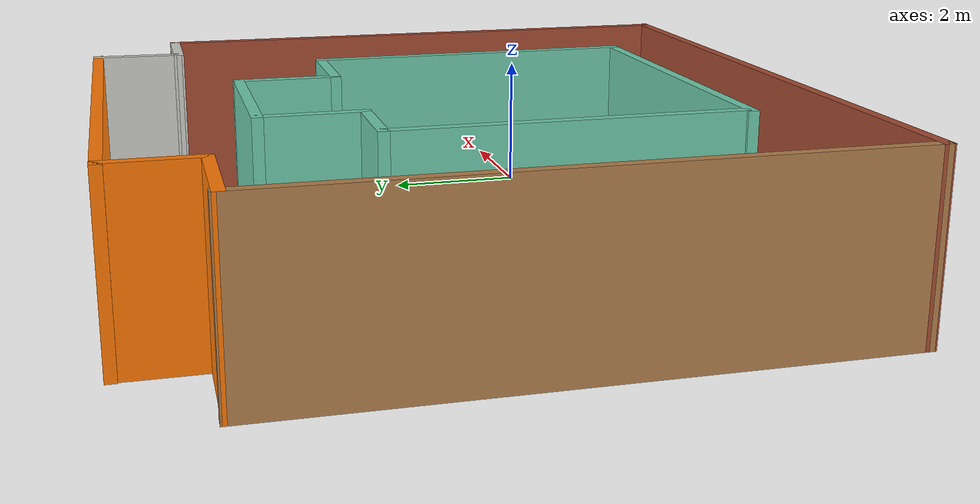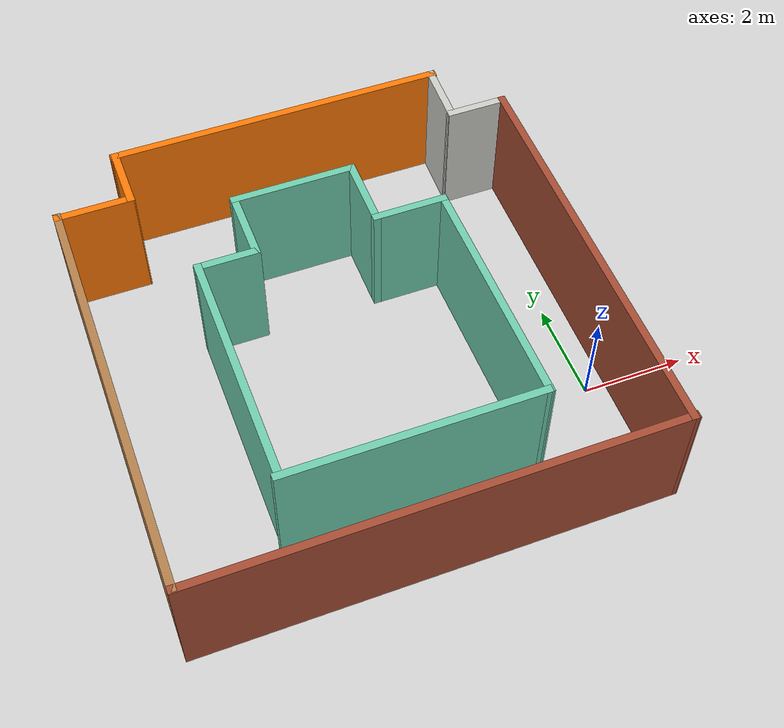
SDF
<?xml version='1.0'?>
<sdf version='1.6'>
  <model name='walls'>
    <pose frame=''>-4.03914 2.09069 0 0 -0 0</pose>
    <link name='Wall_12'>
      <collision name='Wall_12_Collision'>
        <geometry>
          <box>
            <size>5 0.15 2.5</size>
          </box>
        </geometry>
        <pose frame=''>0 0 1.25 0 -0 0</pose>
      </collision>
      <visual name='Wall_12_Visual'>
        <pose frame=''>0 0 1.25 0 -0 0</pose>
        <geometry>
          <box>
            <size>5 0.15 2.5</size>
          </box>
        </geometry>
        <material>
          <script>
            <uri>file://media/materials/scripts/gazebo.material</uri>
            <name>Gazebo/Grey</name>
          </script>
          <ambient>0.435294 0.796078 0.67451 1</ambient>
        </material>
        <meta>
          <layer>0</layer>
        </meta>
      </visual>
      <pose frame=''>0.011045 -3.29036 0 0 -0 0</pose>
    </link>
    <link name='Wall_13'>
      <collision name='Wall_13_Collision'>
        <geometry>
          <box>
            <size>4.83464 0.15 2.5</size>
          </box>
        </geometry>
        <pose frame=''>0 0 1.25 0 -0 0</pose>
      </collision>
      <visual name='Wall_13_Visual'>
        <pose frame=''>0 0 1.25 0 -0 0</pose>
        <geometry>
          <box>
            <size>4.83464 0.15 2.5</size>
          </box>
        </geometry>
        <material>
          <script>
            <uri>file://media/materials/scripts/gazebo.material</uri>
            <name>Gazebo/Grey</name>
          </script>
          <ambient>0.435294 0.796078 0.67451 1</ambient>
        </material>
        <meta>
          <layer>0</layer>
        </meta>
      </visual>
      <pose frame=''>2.4475 -0.948197 0 0 -0 1.57897</pose>
    </link>
    <link name='Wall_14'>
      <collision name='Wall_14_Collision'>
        <geometry>
          <box>
            <size>1.5 0.15 2.5</size>
          </box>
        </geometry>
        <pose frame=''>0 0 1.25 0 -0 0</pose>
      </collision>
      <visual name='Wall_14_Visual'>
        <pose frame=''>0 0 1.25 0 -0 0</pose>
        <geometry>
          <box>
            <size>1.5 0.15 2.5</size>
          </box>
        </geometry>
        <material>
          <script>
            <uri>file://media/materials/scripts/gazebo.material</uri>
            <name>Gazebo/Grey</name>
          </script>
          <ambient>0.435294 0.796078 0.67451 1</ambient>
        </material>
        <meta>
          <layer>0</layer>
        </meta>
      </visual>
      <pose frame=''>1.75337 1.39397 0 0 -0 3.14159</pose>
    </link>
    <link name='Wall_15'>
      <collision name='Wall_15_Collision'>
        <geometry>
          <box>
            <size>1.5 0.15 2.5</size>
          </box>
        </geometry>
        <pose frame=''>0 0 1.25 0 -0 0</pose>
      </collision>
      <visual name='Wall_15_Visual'>
        <pose frame=''>0 0 1.25 0 -0 0</pose>
        <geometry>
          <box>
            <size>1.5 0.15 2.5</size>
          </box>
        </geometry>
        <material>
          <script>
            <uri>file://media/materials/scripts/gazebo.material</uri>
            <name>Gazebo/Grey</name>
          </script>
          <ambient>0.435294 0.796078 0.67451 1</ambient>
        </material>
        <meta>
          <layer>0</layer>
        </meta>
      </visual>
      <pose frame=''>1.07837 2.06897 0 0 -0 1.5708</pose>
    </link>
    <link name='Wall_16'>
      <collision name='Wall_16_Collision'>
        <geometry>
          <box>
            <size>2.5 0.15 2.5</size>
          </box>
        </geometry>
        <pose frame=''>0 0 1.25 0 -0 0</pose>
      </collision>
      <visual name='Wall_16_Visual'>
        <pose frame=''>0 0 1.25 0 -0 0</pose>
        <geometry>
          <box>
            <size>2.5 0.15 2.5</size>
          </box>
        </geometry>
        <material>
          <script>
            <uri>file://media/materials/scripts/gazebo.material</uri>
            <name>Gazebo/Grey</name>
          </script>
          <ambient>0.435294 0.796078 0.67451 1</ambient>
        </material>
        <meta>
          <layer>0</layer>
        </meta>
      </visual>
      <pose frame=''>-0.096633 2.74397 0 0 -0 3.14159</pose>
    </link>
    <link name='Wall_17'>
      <collision name='Wall_17_Collision'>
        <geometry>
          <box>
            <size>1.5 0.15 2.5</size>
          </box>
        </geometry>
        <pose frame=''>0 0 1.25 0 -0 0</pose>
      </collision>
      <visual name='Wall_17_Visual'>
        <pose frame=''>0 0 1.25 0 -0 0</pose>
        <geometry>
          <box>
            <size>1.5 0.15 2.5</size>
          </box>
        </geometry>
        <material>
          <script>
            <uri>file://media/materials/scripts/gazebo.material</uri>
            <name>Gazebo/Grey</name>
          </script>
          <ambient>0.435294 0.796078 0.67451 1</ambient>
        </material>
        <meta>
          <layer>0</layer>
        </meta>
      </visual>
      <pose frame=''>-1.27163 2.06897 0 0 0 -1.5708</pose>
    </link>
    <link name='Wall_18'>
      <collision name='Wall_18_Collision'>
        <geometry>
          <box>
            <size>1.25 0.15 2.5</size>
          </box>
        </geometry>
        <pose frame=''>0 0 1.25 0 -0 0</pose>
      </collision>
      <visual name='Wall_18_Visual'>
        <pose frame=''>0 0 1.25 0 -0 0</pose>
        <geometry>
          <box>
            <size>1.25 0.15 2.5</size>
          </box>
        </geometry>
        <material>
          <script>
            <uri>file://media/materials/scripts/gazebo.material</uri>
            <name>Gazebo/Grey</name>
          </script>
          <ambient>0.435294 0.796078 0.67451 1</ambient>
        </material>
        <meta>
          <layer>0</layer>
        </meta>
      </visual>
      <pose frame=''>-1.82163 1.39397 0 0 -0 3.14159</pose>
    </link>
    <link name='Wall_19'>
      <collision name='Wall_19_Collision'>
        <geometry>
          <box>
            <size>4.75 0.15 2.5</size>
          </box>
        </geometry>
        <pose frame=''>0 0 1.25 0 -0 0</pose>
      </collision>
      <visual name='Wall_19_Visual'>
        <pose frame=''>0 0 1.25 0 -0 0</pose>
        <geometry>
          <box>
            <size>4.75 0.15 2.5</size>
          </box>
        </geometry>
        <material>
          <script>
            <uri>file://media/materials/scripts/gazebo.material</uri>
            <name>Gazebo/Grey</name>
          </script>
          <ambient>0.435294 0.796078 0.67451 1</ambient>
        </material>
        <meta>
          <layer>0</layer>
        </meta>
      </visual>
      <pose frame=''>-2.37163 -0.906029 0 0 0 -1.5708</pose>
    </link>
    <link name='Wall_22'>
      <collision name='Wall_22_Collision'>
        <geometry>
          <box>
            <size>9.20726 0.15 2.5</size>
          </box>
        </geometry>
        <pose frame=''>0 0 1.25 0 -0 0</pose>
      </collision>
      <visual name='Wall_22_Visual'>
        <pose frame=''>0 0 1.25 0 -0 0</pose>
        <geometry>
          <box>
            <size>9.20726 0.15 2.5</size>
          </box>
        </geometry>
        <material>
          <script>
            <uri>file://media/materials/scripts/gazebo.material</uri>
            <name>Gazebo/Bricks</name>
          </script>
          <ambient>1 1 1 1</ambient>
        </material>
        <meta>
          <layer>0</layer>
        </meta>
      </visual>
      <pose frame=''>-0.011214 -4.64013 0 0 -0 0</pose>
    </link>
    <link name='Wall_23'>
      <collision name='Wall_23_Collision'>
        <geometry>
          <box>
            <size>8.23429 0.15 2.5</size>
          </box>
        </geometry>
        <pose frame=''>0 0 1.25 0 -0 0</pose>
      </collision>
      <visual name='Wall_23_Visual'>
        <pose frame=''>0 0 1.25 0 -0 0</pose>
        <geometry>
          <box>
            <size>8.23429 0.15 2.5</size>
          </box>
        </geometry>
        <material>
          <script>
            <uri>file://media/materials/scripts/gazebo.material</uri>
            <name>Gazebo/Bricks</name>
          </script>
          <ambient>1 1 1 1</ambient>
        </material>
        <meta>
          <layer>0</layer>
        </meta>
      </visual>
      <pose frame=''>4.51707 -0.598044 0 0 -0 1.56516</pose>
    </link>
    <link name='Wall_24'>
      <collision name='Wall_24_Collision'>
        <geometry>
          <box>
            <size>1.25 0.15 2.5</size>
          </box>
        </geometry>
        <pose frame=''>0 0 1.25 0 -0 0</pose>
      </collision>
      <visual name='Wall_24_Visual'>
        <pose frame=''>0 0 1.25 0 -0 0</pose>
        <geometry>
          <box>
            <size>1.25 0.15 2.5</size>
          </box>
        </geometry>
        <material>
          <script>
            <uri>file://media/materials/scripts/gazebo.material</uri>
            <name>Gazebo/CeilingTiled</name>
          </script>
          <ambient>1 1 1 1</ambient>
        </material>
        <meta>
          <layer>0</layer>
        </meta>
      </visual>
      <pose frame=''>3.98987 3.44404 0 0 -0 3.14159</pose>
    </link>
    <link name='Wall_25'>
      <collision name='Wall_25_Collision'>
        <geometry>
          <box>
            <size>1.31413 0.15 2.5</size>
          </box>
        </geometry>
        <pose frame=''>0 0 1.25 0 -0 0</pose>
      </collision>
      <visual name='Wall_25_Visual'>
        <pose frame=''>0 0 1.25 0 -0 0</pose>
        <geometry>
          <box>
            <size>1.31413 0.15 2.5</size>
          </box>
        </geometry>
        <material>
          <script>
            <uri>file://media/materials/scripts/gazebo.material</uri>
            <name>Gazebo/CeilingTiled</name>
          </script>
          <ambient>1 1 1 1</ambient>
        </material>
        <meta>
          <layer>0</layer>
        </meta>
      </visual>
      <pose frame=''>3.45889 4.05638 0 0 -0 1.53811</pose>
    </link>
    <link name='Wall_26'>
      <collision name='Wall_26_Collision'>
        <geometry>
          <box>
            <size>6.76775 0.15 2.5</size>
          </box>
        </geometry>
        <pose frame=''>0 0 1.25 0 -0 0</pose>
      </collision>
      <visual name='Wall_26_Visual'>
        <pose frame=''>0 0 1.25 0 -0 0</pose>
        <geometry>
          <box>
            <size>6.76775 0.15 2.5</size>
          </box>
        </geometry>
        <material>
          <script>
            <uri>file://media/materials/scripts/gazebo.material</uri>
            <name>Gazebo/Grey</name>
          </script>
          <ambient>0.996078 0.47451 0.0196078 1</ambient>
        </material>
        <meta>
          <layer>0</layer>
        </meta>
      </visual>
      <pose frame=''>0.192176 4.63814 0 0 -0 3.14159</pose>
    </link>
    <link name='Wall_27'>
      <collision name='Wall_27_Collision'>
        <geometry>
          <box>
            <size>1.32827 0.15 2.5</size>
          </box>
        </geometry>
        <pose frame=''>0 0 1.25 0 -0 0</pose>
      </collision>
      <visual name='Wall_27_Visual'>
        <pose frame=''>0 0 1.25 0 -0 0</pose>
        <geometry>
          <box>
            <size>1.32827 0.15 2.5</size>
          </box>
        </geometry>
        <material>
          <script>
            <uri>file://media/materials/scripts/gazebo.material</uri>
            <name>Gazebo/Grey</name>
          </script>
          <ambient>0.996078 0.47451 0.0196078 1</ambient>
        </material>
        <meta>
          <layer>0</layer>
        </meta>
      </visual>
      <pose frame=''>-3.09357 4.04901 0 0 0 -1.5708</pose>
    </link>
    <link name='Wall_28'>
      <collision name='Wall_28_Collision'>
        <geometry>
          <box>
            <size>1.52313 0.15 2.5</size>
          </box>
        </geometry>
        <pose frame=''>0 0 1.25 0 -0 0</pose>
      </collision>
      <visual name='Wall_28_Visual'>
        <pose frame=''>0 0 1.25 0 -0 0</pose>
        <geometry>
          <box>
            <size>1.52313 0.15 2.5</size>
          </box>
        </geometry>
        <material>
          <script>
            <uri>file://media/materials/scripts/gazebo.material</uri>
            <name>Gazebo/Grey</name>
          </script>
          <ambient>0.996078 0.47451 0.0196078 1</ambient>
        </material>
        <meta>
          <layer>0</layer>
        </meta>
      </visual>
      <pose frame=''>-3.80326 3.45987 0 0 0 -3.14159</pose>
    </link>
    <link name='Wall_29'>
      <collision name='Wall_29_Collision'>
        <geometry>
          <box>
            <size>8.25015 0.15 2.5</size>
          </box>
        </geometry>
        <pose frame=''>0 0 1.25 0 -0 0</pose>
      </collision>
      <visual name='Wall_29_Visual'>
        <pose frame=''>0 0 1.25 0 -0 0</pose>
        <geometry>
          <box>
            <size>8.25015 0.15 2.5</size>
          </box>
        </geometry>
        <material>
          <script>
            <uri>file://media/materials/scripts/gazebo.material</uri>
            <name>Gazebo/Wood</name>
          </script>
          <ambient>1 1 1 1</ambient>
        </material>
        <meta>
          <layer>0</layer>
        </meta>
      </visual>
      <pose frame=''>-4.51483 -0.566997 0 0 0 -1.57697</pose>
    </link>
    <static>1</static>
  </model>
</sdf>
